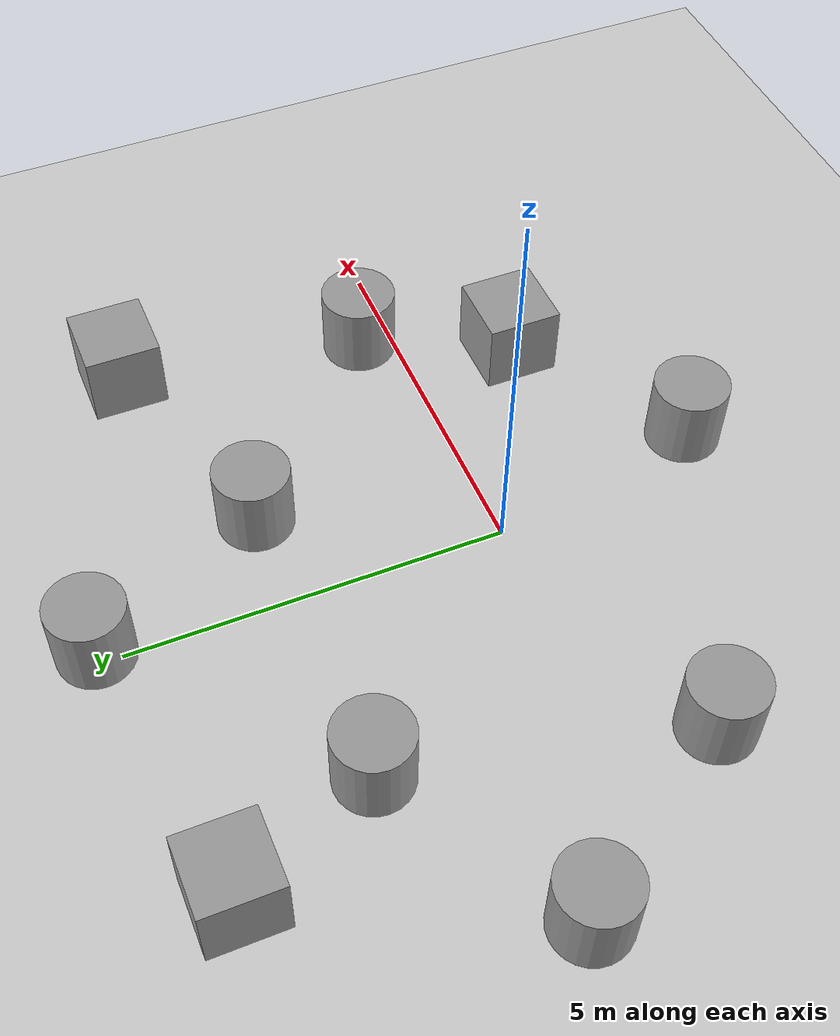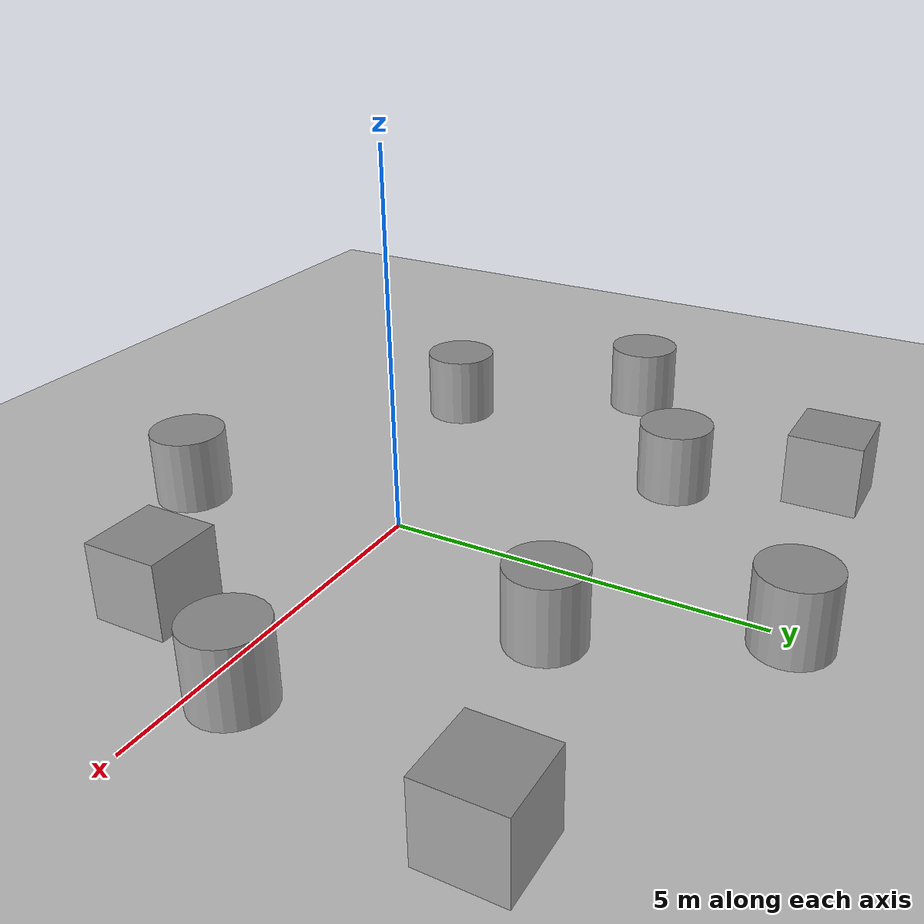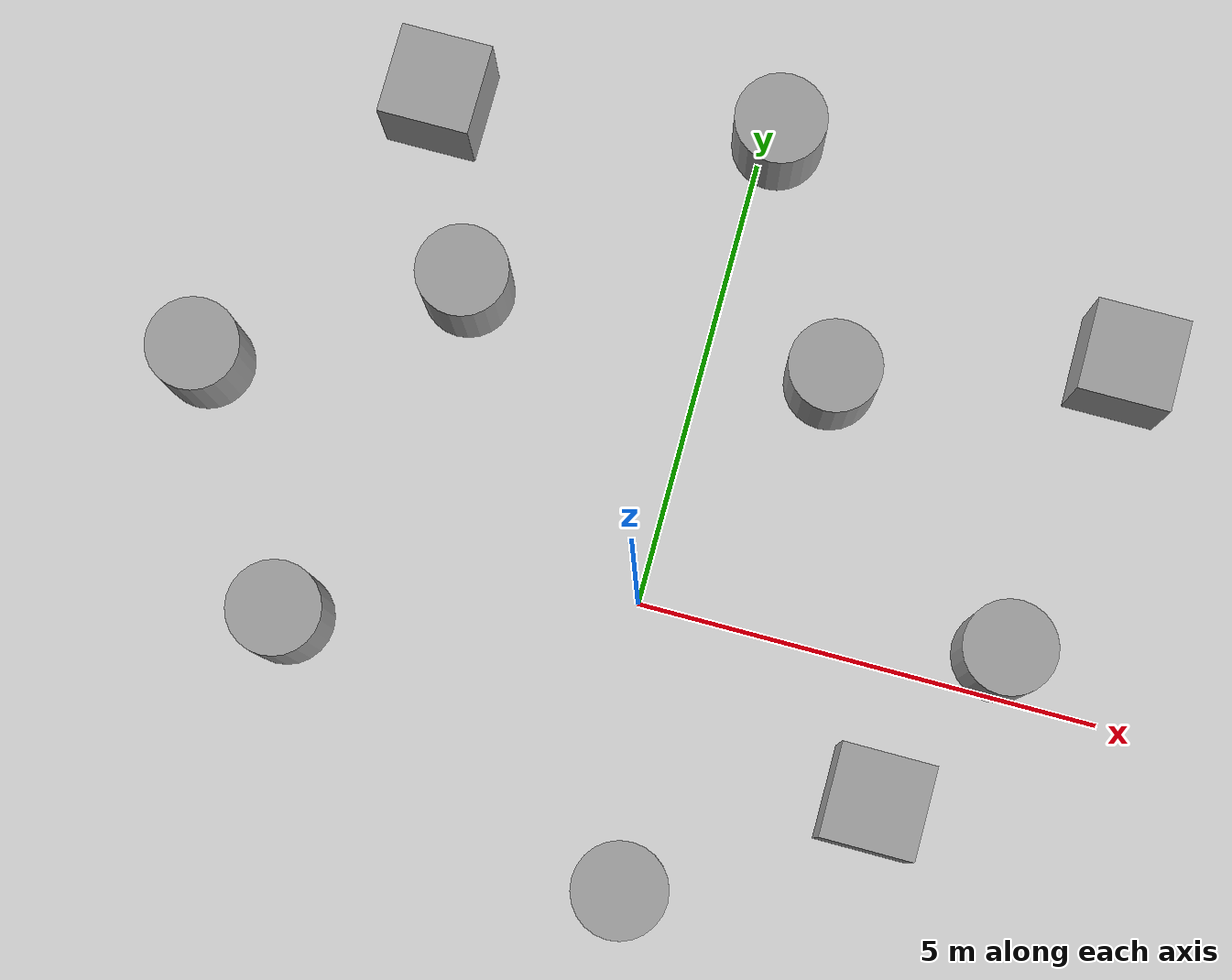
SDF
<sdf version="1.7">
 <world name="default">
  <light name="sun" type="directional">
   <pose>0 0 10 0 -0 0</pose>
   <diffuse>0.8 0.8 0.8 1</diffuse>
   <specular>0.2 0.2 0.2 1</specular>
   <attenuation>
    <range>1000</range>
    <constant>0.9</constant>
    <linear>0.01</linear>
    <quadratic>0.001</quadratic>
   </attenuation>
   <direction>-0.5 0.1 -0.9</direction>
   <spot><inner_angle>0</inner_angle><outer_angle>0</outer_angle><falloff>0</falloff></spot>
  </light>
  <model name="ground_plane">
   <static>1</static>
   <link name="link">
    <collision name="collision">
     <geometry><plane><normal>0 0 1</normal><size>100 100</size></plane></geometry>
     <surface>
      <contact><collide_bitmask>65535</collide_bitmask></contact>
      <friction><ode><mu>100</mu><mu2>50</mu2></ode></friction>
     </surface>
    </collision>
    <visual name="visual">
     <cast_shadows>0</cast_shadows>
     <geometry><plane><normal>0 0 1</normal><size>100 100</size></plane></geometry>
     <material>
      <script><uri>file://media/materials/scripts/gazebo.material</uri><name>Gazebo/Grey</name></script>
     </material>
    </visual>
   </link>
  </model>
  <gravity>0 0 -9.8</gravity>
  <magnetic_field>6e-06 2.3e-05 -4.2e-05</magnetic_field>
  <atmosphere type="adiabatic"/>
  <physics type="ode">
   <max_step_size>0.001</max_step_size>
   <real_time_factor>1</real_time_factor>
   <real_time_update_rate>1000</real_time_update_rate>
  </physics>
  <scene><ambient>0.4 0.4 0.4 1</ambient><background>0.7 0.7 0.7 1</background><shadows>1</shadows></scene>
  <spherical_coordinates>
   <surface_model>EARTH_WGS84</surface_model>
   <latitude_deg>0</latitude_deg>
   <longitude_deg>0</longitude_deg>
   <elevation>0</elevation>
   <heading_deg>0</heading_deg>
  </spherical_coordinates>
  <model name="unit_cylinder">
   <pose>1.36814 2.83372 0.499992 -3e-06 3e-06 0</pose>
   <link name="link">
    <inertial>
     <mass>1</mass>
     <inertia><ixx>0.145833</ixx><ixy>0</ixy><ixz>0</ixz><iyy>0.145833</iyy><iyz>0</iyz><izz>0.125</izz></inertia>
    </inertial>
    <collision name="collision">
     <geometry><cylinder><radius>0.5</radius><length>1</length></cylinder></geometry>
    </collision>
    <visual name="visual">
     <geometry><cylinder><radius>0.5</radius><length>1</length></cylinder></geometry>
     <material>
      <script><name>Gazebo/Grey</name><uri>file://media/materials/scripts/gazebo.material</uri></script>
     </material>
    </visual>
   </link>
  </model>
  <model name="unit_cylinder_0">
   <pose>-2.6658 2.80689 0.499998 3e-06 -3e-06 0</pose>
   <link name="link">
    <inertial>
     <mass>1</mass>
     <inertia><ixx>0.145833</ixx><ixy>0</ixy><ixz>0</ixz><iyy>0.145833</iyy><iyz>0</iyz><izz>0.125</izz></inertia>
    </inertial>
    <collision name="collision">
     <geometry><cylinder><radius>0.5</radius><length>1</length></cylinder></geometry>
    </collision>
    <visual name="visual">
     <geometry><cylinder><radius>0.5</radius><length>1</length></cylinder></geometry>
     <material>
      <script><name>Gazebo/Grey</name><uri>file://media/materials/scripts/gazebo.material</uri></script>
     </material>
    </visual>
   </link>
  </model>
  <model name="unit_cylinder_1">
   <pose>0.148257 5.27375 0.499992 -3e-06 3e-06 0</pose>
   <link name="link">
    <inertial>
     <mass>1</mass>
     <inertia><ixx>0.145833</ixx><ixy>0</ixy><ixz>0</ixz><iyy>0.145833</iyy><iyz>0</iyz><izz>0.125</izz></inertia>
    </inertial>
    <collision name="collision">
     <geometry><cylinder><radius>0.5</radius><length>1</length></cylinder></geometry>
    </collision>
    <visual name="visual">
     <geometry><cylinder><radius>0.5</radius><length>1</length></cylinder></geometry>
     <material>
      <script><name>Gazebo/Grey</name><uri>file://media/materials/scripts/gazebo.material</uri></script>
     </material>
    </visual>
   </link>
  </model>
  <model name="unit_cylinder_2">
   <pose>-5.16374 1.32338 0.499998 3e-06 -3e-06 0</pose>
   <link name="link">
    <inertial>
     <mass>1</mass>
     <inertia><ixx>0.145833</ixx><ixy>0</ixy><ixz>0</ixz><iyy>0.145833</iyy><iyz>0</iyz><izz>0.125</izz></inertia>
    </inertial>
    <collision name="collision">
     <geometry><cylinder><radius>0.5</radius><length>1</length></cylinder></geometry>
    </collision>
    <visual name="visual">
     <geometry><cylinder><radius>0.5</radius><length>1</length></cylinder></geometry>
     <material>
      <script><name>Gazebo/Grey</name><uri>file://media/materials/scripts/gazebo.material</uri></script>
     </material>
    </visual>
   </link>
  </model>
  <model name="unit_cylinder_3">
   <pose>-3.55676 -1.10643 0.499992 -3e-06 4e-06 0</pose>
   <link name="link">
    <inertial>
     <mass>1</mass>
     <inertia><ixx>0.145833</ixx><ixy>0</ixy><ixz>0</ixz><iyy>0.145833</iyy><iyz>0</iyz><izz>0.125</izz></inertia>
    </inertial>
    <collision name="collision">
     <geometry><cylinder><radius>0.5</radius><length>1</length></cylinder></geometry>
    </collision>
    <visual name="visual">
     <geometry><cylinder><radius>0.5</radius><length>1</length></cylinder></geometry>
     <material>
      <script><name>Gazebo/Grey</name><uri>file://media/materials/scripts/gazebo.material</uri></script>
     </material>
    </visual>
   </link>
  </model>
  <model name="unit_cylinder_4">
   <pose>3.81863 0.45373 0.499998 3e-06 -4e-06 0</pose>
   <link name="link">
    <inertial>
     <mass>1</mass>
     <inertia><ixx>0.145833</ixx><ixy>0</ixy><ixz>0</ixz><iyy>0.145833</iyy><iyz>0</iyz><izz>0.125</izz></inertia>
    </inertial>
    <collision name="collision">
     <geometry><cylinder><radius>0.5</radius><length>1</length></cylinder></geometry>
    </collision>
    <visual name="visual">
     <geometry><cylinder><radius>0.5</radius><length>1</length></cylinder></geometry>
     <material>
      <script><name>Gazebo/Grey</name><uri>file://media/materials/scripts/gazebo.material</uri></script>
     </material>
    </visual>
   </link>
  </model>
  <model name="unit_cylinder_5">
   <pose>0.608612 -2.93921 0.499992 -3e-06 4e-06 0</pose>
   <link name="link">
    <inertial>
     <mass>1</mass>
     <inertia><ixx>0.145833</ixx><ixy>0</ixy><ixz>0</ixz><iyy>0.145833</iyy><iyz>0</iyz><izz>0.125</izz></inertia>
    </inertial>
    <collision name="collision">
     <geometry><cylinder><radius>0.5</radius><length>1</length></cylinder></geometry>
    </collision>
    <visual name="visual">
     <geometry><cylinder><radius>0.5</radius><length>1</length></cylinder></geometry>
     <material>
      <script><name>Gazebo/Grey</name><uri>file://media/materials/scripts/gazebo.material</uri></script>
     </material>
    </visual>
   </link>
  </model>
  <model name="unit_box">
   <pose>4.34393 3.75373 0.499995 -1e-05 -0 -0</pose>
   <link name="link">
    <inertial>
     <mass>1</mass>
     <inertia>
      <ixx>0.166667</ixx>
      <ixy>0</ixy>
      <ixz>0</ixz>
      <iyy>0.166667</iyy>
      <iyz>0</iyz>
      <izz>0.166667</izz>
     </inertia>
    </inertial>
    <collision name="collision"><geometry><box><size>1 1 1</size></box></geometry></collision>
    <visual name="visual">
     <geometry><box><size>1 1 1</size></box></geometry>
     <material>
      <script><name>Gazebo/Grey</name><uri>file://media/materials/scripts/gazebo.material</uri></script>
     </material>
    </visual>
   </link>
  </model>
  <model name="unit_box_0">
   <pose>-3.51188 4.74362 0.499995 0 1e-05 0</pose>
   <link name="link">
    <inertial>
     <mass>1</mass>
     <inertia>
      <ixx>0.166667</ixx>
      <ixy>0</ixy>
      <ixz>0</ixz>
      <iyy>0.166667</iyy>
      <iyz>0</iyz>
      <izz>0.166667</izz>
     </inertia>
    </inertial>
    <collision name="collision"><geometry><box><size>1 1 1</size></box></geometry></collision>
    <visual name="visual">
     <geometry><box><size>1 1 1</size></box></geometry>
     <material>
      <script><name>Gazebo/Grey</name><uri>file://media/materials/scripts/gazebo.material</uri></script>
     </material>
    </visual>
   </link>
  </model>
  <model name="unit_box_1">
   <pose>2.89874 -1.40711 0.5 0 -0 0</pose>
   <link name="link">
    <inertial>
     <mass>1</mass>
     <inertia>
      <ixx>0.166667</ixx>
      <ixy>0</ixy>
      <ixz>0</ixz>
      <iyy>0.166667</iyy>
      <iyz>0</iyz>
      <izz>0.166667</izz>
     </inertia>
    </inertial>
    <collision name="collision"><geometry><box><size>1 1 1</size></box></geometry></collision>
    <visual name="visual">
     <geometry><box><size>1 1 1</size></box></geometry>
     <material>
      <script><name>Gazebo/Grey</name><uri>file://media/materials/scripts/gazebo.material</uri></script>
     </material>
    </visual>
   </link>
  </model>
 </world>
</sdf>
